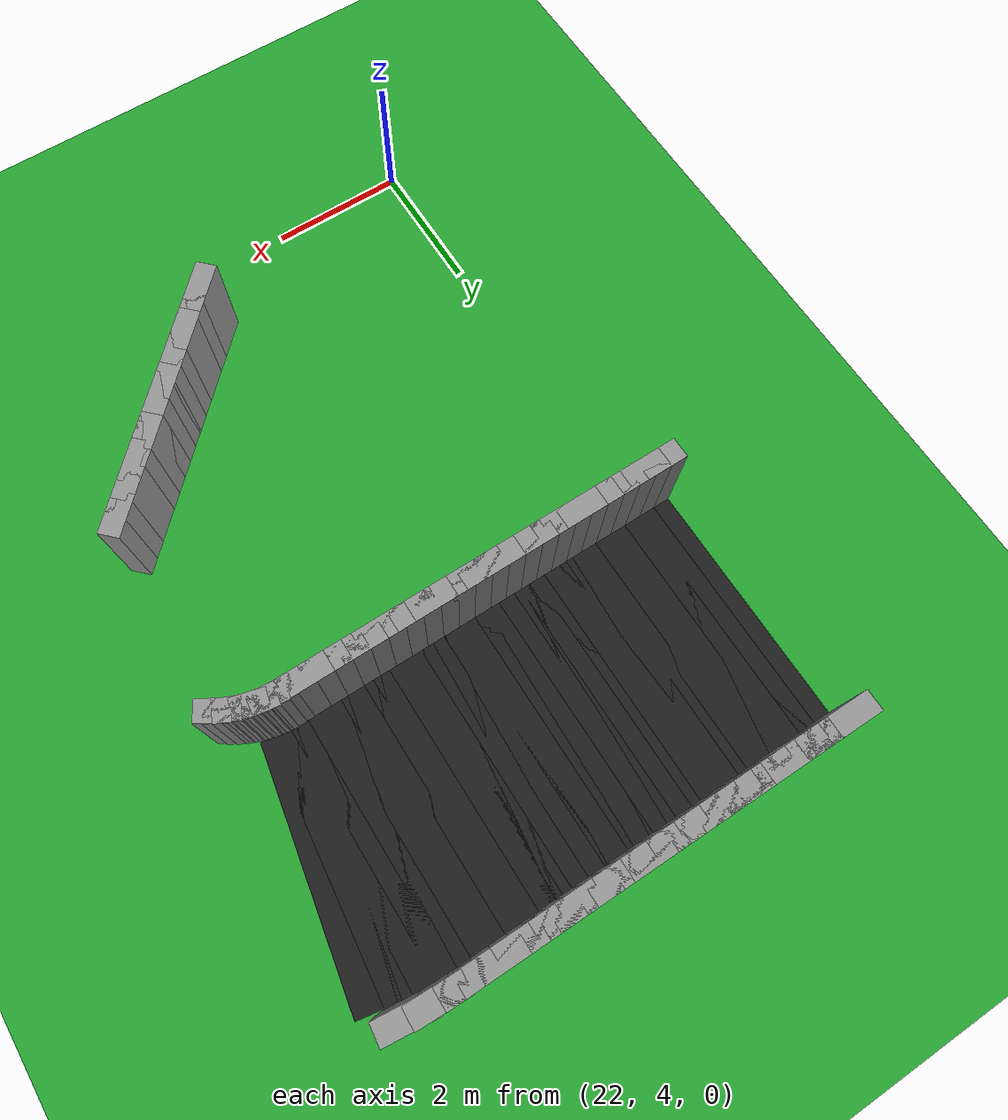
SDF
<sdf version="1.6">
 <world name="obstacle_tight">
  <include><uri>model://sun</uri></include>
  <model name="ground_plane">
   <static>true</static>
   <link name="link">
    <collision name="collision">
     <surface><friction><ode><mu>100</mu><mu2>50</mu2></ode></friction></surface>
     <geometry><plane><normal>0 0 1</normal><size>120 120</size></plane></geometry>
    </collision>
    <visual name="visual">
     <geometry><plane><normal>0 0 1</normal><size>120 120</size></plane></geometry>
     <material>
      <script><uri>file://media/materials/scripts/gazebo.material</uri><name>Gazebo/Green</name></script>
     </material>
    </visual>
   </link>
  </model>
  <model name="curbL_112">
   <static>true</static>
   <pose>25.604 5.048 0.750 0 0 0.78540</pose>
   <link name="link">
    <collision name="collision"><geometry><box><size>0.610 0.300 1.500</size></box></geometry></collision>
    <visual name="visual">
     <geometry><box><size>0.610 0.300 1.500</size></box></geometry>
     <material>
      <script><uri>file://media/materials/scripts/gazebo.material</uri><name>Gazebo/Grey</name></script>
     </material>
    </visual>
   </link>
  </model>
  <model name="curbL_113">
   <static>true</static>
   <pose>25.781 5.225 0.750 0 0 0.78540</pose>
   <link name="link">
    <collision name="collision"><geometry><box><size>0.610 0.300 1.500</size></box></geometry></collision>
    <visual name="visual">
     <geometry><box><size>0.610 0.300 1.500</size></box></geometry>
     <material>
      <script><uri>file://media/materials/scripts/gazebo.material</uri><name>Gazebo/Grey</name></script>
     </material>
    </visual>
   </link>
  </model>
  <model name="curbL_114">
   <static>true</static>
   <pose>25.958 5.401 0.750 0 0 0.78540</pose>
   <link name="link">
    <collision name="collision"><geometry><box><size>0.610 0.300 1.500</size></box></geometry></collision>
    <visual name="visual">
     <geometry><box><size>0.610 0.300 1.500</size></box></geometry>
     <material>
      <script><uri>file://media/materials/scripts/gazebo.material</uri><name>Gazebo/Grey</name></script>
     </material>
    </visual>
   </link>
  </model>
  <model name="curbL_115">
   <static>true</static>
   <pose>26.134 5.578 0.750 0 0 0.78540</pose>
   <link name="link">
    <collision name="collision"><geometry><box><size>0.610 0.300 1.500</size></box></geometry></collision>
    <visual name="visual">
     <geometry><box><size>0.610 0.300 1.500</size></box></geometry>
     <material>
      <script><uri>file://media/materials/scripts/gazebo.material</uri><name>Gazebo/Grey</name></script>
     </material>
    </visual>
   </link>
  </model>
  <model name="curbL_116">
   <static>true</static>
   <pose>26.311 5.755 0.750 0 0 0.78540</pose>
   <link name="link">
    <collision name="collision"><geometry><box><size>0.610 0.300 1.500</size></box></geometry></collision>
    <visual name="visual">
     <geometry><box><size>0.610 0.300 1.500</size></box></geometry>
     <material>
      <script><uri>file://media/materials/scripts/gazebo.material</uri><name>Gazebo/Grey</name></script>
     </material>
    </visual>
   </link>
  </model>
  <model name="curbL_117">
   <static>true</static>
   <pose>26.488 5.932 0.750 0 0 0.78540</pose>
   <link name="link">
    <collision name="collision"><geometry><box><size>0.610 0.300 1.500</size></box></geometry></collision>
    <visual name="visual">
     <geometry><box><size>0.610 0.300 1.500</size></box></geometry>
     <material>
      <script><uri>file://media/materials/scripts/gazebo.material</uri><name>Gazebo/Grey</name></script>
     </material>
    </visual>
   </link>
  </model>
  <model name="curbL_118">
   <static>true</static>
   <pose>26.665 6.109 0.750 0 0 0.78540</pose>
   <link name="link">
    <collision name="collision"><geometry><box><size>0.610 0.300 1.500</size></box></geometry></collision>
    <visual name="visual">
     <geometry><box><size>0.610 0.300 1.500</size></box></geometry>
     <material>
      <script><uri>file://media/materials/scripts/gazebo.material</uri><name>Gazebo/Grey</name></script>
     </material>
    </visual>
   </link>
  </model>
  <model name="curbL_119">
   <static>true</static>
   <pose>26.841 6.285 0.750 0 0 0.78540</pose>
   <link name="link">
    <collision name="collision"><geometry><box><size>0.610 0.300 1.500</size></box></geometry></collision>
    <visual name="visual">
     <geometry><box><size>0.610 0.300 1.500</size></box></geometry>
     <material>
      <script><uri>file://media/materials/scripts/gazebo.material</uri><name>Gazebo/Grey</name></script>
     </material>
    </visual>
   </link>
  </model>
  <model name="curbL_120">
   <static>true</static>
   <pose>27.018 6.462 0.750 0 0 0.78540</pose>
   <link name="link">
    <collision name="collision"><geometry><box><size>0.610 0.300 1.500</size></box></geometry></collision>
    <visual name="visual">
     <geometry><box><size>0.610 0.300 1.500</size></box></geometry>
     <material>
      <script><uri>file://media/materials/scripts/gazebo.material</uri><name>Gazebo/Grey</name></script>
     </material>
    </visual>
   </link>
  </model>
  <model name="curbL_121">
   <static>true</static>
   <pose>27.195 6.639 0.750 0 0 0.78540</pose>
   <link name="link">
    <collision name="collision"><geometry><box><size>0.610 0.300 1.500</size></box></geometry></collision>
    <visual name="visual">
     <geometry><box><size>0.610 0.300 1.500</size></box></geometry>
     <material>
      <script><uri>file://media/materials/scripts/gazebo.material</uri><name>Gazebo/Grey</name></script>
     </material>
    </visual>
   </link>
  </model>
  <model name="curbL_122">
   <static>true</static>
   <pose>27.372 6.816 0.750 0 0 0.78540</pose>
   <link name="link">
    <collision name="collision"><geometry><box><size>0.610 0.300 1.500</size></box></geometry></collision>
    <visual name="visual">
     <geometry><box><size>0.610 0.300 1.500</size></box></geometry>
     <material>
      <script><uri>file://media/materials/scripts/gazebo.material</uri><name>Gazebo/Grey</name></script>
     </material>
    </visual>
   </link>
  </model>
  <model name="curbL_123">
   <static>true</static>
   <pose>27.549 6.992 0.750 0 0 0.78540</pose>
   <link name="link">
    <collision name="collision"><geometry><box><size>0.610 0.300 1.500</size></box></geometry></collision>
    <visual name="visual">
     <geometry><box><size>0.610 0.300 1.500</size></box></geometry>
     <material>
      <script><uri>file://media/materials/scripts/gazebo.material</uri><name>Gazebo/Grey</name></script>
     </material>
    </visual>
   </link>
  </model>
  <model name="curbL_124">
   <static>true</static>
   <pose>27.725 7.169 0.750 0 0 0.78540</pose>
   <link name="link">
    <collision name="collision"><geometry><box><size>0.610 0.300 1.500</size></box></geometry></collision>
    <visual name="visual">
     <geometry><box><size>0.610 0.300 1.500</size></box></geometry>
     <material>
      <script><uri>file://media/materials/scripts/gazebo.material</uri><name>Gazebo/Grey</name></script>
     </material>
    </visual>
   </link>
  </model>
  <model name="curbL_125">
   <static>true</static>
   <pose>27.902 7.346 0.750 0 0 0.78540</pose>
   <link name="link">
    <collision name="collision"><geometry><box><size>0.610 0.300 1.500</size></box></geometry></collision>
    <visual name="visual">
     <geometry><box><size>0.610 0.300 1.500</size></box></geometry>
     <material>
      <script><uri>file://media/materials/scripts/gazebo.material</uri><name>Gazebo/Grey</name></script>
     </material>
    </visual>
   </link>
  </model>
  <model name="curbL_126">
   <static>true</static>
   <pose>28.079 7.523 0.750 0 0 0.78540</pose>
   <link name="link">
    <collision name="collision"><geometry><box><size>0.610 0.300 1.500</size></box></geometry></collision>
    <visual name="visual">
     <geometry><box><size>0.610 0.300 1.500</size></box></geometry>
     <material>
      <script><uri>file://media/materials/scripts/gazebo.material</uri><name>Gazebo/Grey</name></script>
     </material>
    </visual>
   </link>
  </model>
  <model name="curbL_154">
   <static>true</static>
   <pose>28.215 10.394 0.750 0 0 2.60609</pose>
   <link name="link">
    <collision name="collision"><geometry><box><size>0.471 0.300 1.500</size></box></geometry></collision>
    <visual name="visual">
     <geometry><box><size>0.471 0.300 1.500</size></box></geometry>
     <material>
      <script><uri>file://media/materials/scripts/gazebo.material</uri><name>Gazebo/Grey</name></script>
     </material>
    </visual>
   </link>
  </model>
  <model name="curbL_155">
   <static>true</static>
   <pose>28.118 10.447 0.750 0 0 2.67749</pose>
   <link name="link">
    <collision name="collision"><geometry><box><size>0.471 0.300 1.500</size></box></geometry></collision>
    <visual name="visual">
     <geometry><box><size>0.471 0.300 1.500</size></box></geometry>
     <material>
      <script><uri>file://media/materials/scripts/gazebo.material</uri><name>Gazebo/Grey</name></script>
     </material>
    </visual>
   </link>
  </model>
  <model name="curbL_156">
   <static>true</static>
   <pose>28.017 10.493 0.750 0 0 2.74889</pose>
   <link name="link">
    <collision name="collision"><geometry><box><size>0.471 0.300 1.500</size></box></geometry></collision>
    <visual name="visual">
     <geometry><box><size>0.471 0.300 1.500</size></box></geometry>
     <material>
      <script><uri>file://media/materials/scripts/gazebo.material</uri><name>Gazebo/Grey</name></script>
     </material>
    </visual>
   </link>
  </model>
  <model name="curbL_157">
   <static>true</static>
   <pose>27.914 10.532 0.750 0 0 2.82029</pose>
   <link name="link">
    <collision name="collision"><geometry><box><size>0.471 0.300 1.500</size></box></geometry></collision>
    <visual name="visual">
     <geometry><box><size>0.471 0.300 1.500</size></box></geometry>
     <material>
      <script><uri>file://media/materials/scripts/gazebo.material</uri><name>Gazebo/Grey</name></script>
     </material>
    </visual>
   </link>
  </model>
  <model name="curbL_158">
   <static>true</static>
   <pose>27.808 10.563 0.750 0 0 2.89169</pose>
   <link name="link">
    <collision name="collision"><geometry><box><size>0.471 0.300 1.500</size></box></geometry></collision>
    <visual name="visual">
     <geometry><box><size>0.471 0.300 1.500</size></box></geometry>
     <material>
      <script><uri>file://media/materials/scripts/gazebo.material</uri><name>Gazebo/Grey</name></script>
     </material>
    </visual>
   </link>
  </model>
  <model name="asphalt_159">
   <static>true</static>
   <pose>28.046 12.504 0.005 0 0 2.96309</pose>
   <link name="link">
    <visual name="visual">
     <geometry><box><size>0.610 3.600 0.010</size></box></geometry>
     <material>
      <script><uri>file://media/materials/scripts/gazebo.material</uri><name>Gazebo/Black</name></script>
     </material>
    </visual>
   </link>
  </model>
  <model name="curbL_159">
   <static>true</static>
   <pose>27.699 10.586 0.750 0 0 2.96309</pose>
   <link name="link">
    <collision name="collision"><geometry><box><size>0.471 0.300 1.500</size></box></geometry></collision>
    <visual name="visual">
     <geometry><box><size>0.471 0.300 1.500</size></box></geometry>
     <material>
      <script><uri>file://media/materials/scripts/gazebo.material</uri><name>Gazebo/Grey</name></script>
     </material>
    </visual>
   </link>
  </model>
  <model name="asphalt_160">
   <static>true</static>
   <pose>27.798 12.540 0.005 0 0 3.03449</pose>
   <link name="link">
    <visual name="visual">
     <geometry><box><size>0.610 3.600 0.010</size></box></geometry>
     <material>
      <script><uri>file://media/materials/scripts/gazebo.material</uri><name>Gazebo/Black</name></script>
     </material>
    </visual>
   </link>
  </model>
  <model name="curbL_160">
   <static>true</static>
   <pose>27.590 10.602 0.750 0 0 3.03449</pose>
   <link name="link">
    <collision name="collision"><geometry><box><size>0.471 0.300 1.500</size></box></geometry></collision>
    <visual name="visual">
     <geometry><box><size>0.471 0.300 1.500</size></box></geometry>
     <material>
      <script><uri>file://media/materials/scripts/gazebo.material</uri><name>Gazebo/Grey</name></script>
     </material>
    </visual>
   </link>
  </model>
  <model name="curbR_160">
   <static>true</static>
   <pose>28.007 14.477 0.750 0 0 3.03449</pose>
   <link name="link">
    <collision name="collision"><geometry><box><size>0.749 0.300 1.500</size></box></geometry></collision>
    <visual name="visual">
     <geometry><box><size>0.749 0.300 1.500</size></box></geometry>
     <material>
      <script><uri>file://media/materials/scripts/gazebo.material</uri><name>Gazebo/Grey</name></script>
     </material>
    </visual>
   </link>
  </model>
  <model name="asphalt_161">
   <static>true</static>
   <pose>27.549 12.558 0.005 0 0 3.10589</pose>
   <link name="link">
    <visual name="visual">
     <geometry><box><size>0.610 3.600 0.010</size></box></geometry>
     <material>
      <script><uri>file://media/materials/scripts/gazebo.material</uri><name>Gazebo/Black</name></script>
     </material>
    </visual>
   </link>
  </model>
  <model name="curbL_161">
   <static>true</static>
   <pose>27.480 10.610 0.750 0 0 3.10589</pose>
   <link name="link">
    <collision name="collision"><geometry><box><size>0.471 0.300 1.500</size></box></geometry></collision>
    <visual name="visual">
     <geometry><box><size>0.471 0.300 1.500</size></box></geometry>
     <material>
      <script><uri>file://media/materials/scripts/gazebo.material</uri><name>Gazebo/Grey</name></script>
     </material>
    </visual>
   </link>
  </model>
  <model name="curbR_161">
   <static>true</static>
   <pose>27.619 14.505 0.750 0 0 3.10589</pose>
   <link name="link">
    <collision name="collision"><geometry><box><size>0.749 0.300 1.500</size></box></geometry></collision>
    <visual name="visual">
     <geometry><box><size>0.749 0.300 1.500</size></box></geometry>
     <material>
      <script><uri>file://media/materials/scripts/gazebo.material</uri><name>Gazebo/Grey</name></script>
     </material>
    </visual>
   </link>
  </model>
  <model name="asphalt_162">
   <static>true</static>
   <pose>27.299 12.562 0.005 0 0 3.14159</pose>
   <link name="link">
    <visual name="visual">
     <geometry><box><size>0.610 3.600 0.010</size></box></geometry>
     <material>
      <script><uri>file://media/materials/scripts/gazebo.material</uri><name>Gazebo/Black</name></script>
     </material>
    </visual>
   </link>
  </model>
  <model name="curbL_162">
   <static>true</static>
   <pose>27.299 10.612 0.750 0 0 3.14159</pose>
   <link name="link">
    <collision name="collision"><geometry><box><size>0.610 0.300 1.500</size></box></geometry></collision>
    <visual name="visual">
     <geometry><box><size>0.610 0.300 1.500</size></box></geometry>
     <material>
      <script><uri>file://media/materials/scripts/gazebo.material</uri><name>Gazebo/Grey</name></script>
     </material>
    </visual>
   </link>
  </model>
  <model name="curbR_162">
   <static>true</static>
   <pose>27.299 14.512 0.750 0 0 3.14159</pose>
   <link name="link">
    <collision name="collision"><geometry><box><size>0.610 0.300 1.500</size></box></geometry></collision>
    <visual name="visual">
     <geometry><box><size>0.610 0.300 1.500</size></box></geometry>
     <material>
      <script><uri>file://media/materials/scripts/gazebo.material</uri><name>Gazebo/Grey</name></script>
     </material>
    </visual>
   </link>
  </model>
  <model name="asphalt_163">
   <static>true</static>
   <pose>27.049 12.562 0.005 0 0 3.14159</pose>
   <link name="link">
    <visual name="visual">
     <geometry><box><size>0.610 3.600 0.010</size></box></geometry>
     <material>
      <script><uri>file://media/materials/scripts/gazebo.material</uri><name>Gazebo/Black</name></script>
     </material>
    </visual>
   </link>
  </model>
  <model name="curbL_163">
   <static>true</static>
   <pose>27.049 10.612 0.750 0 0 3.14159</pose>
   <link name="link">
    <collision name="collision"><geometry><box><size>0.610 0.300 1.500</size></box></geometry></collision>
    <visual name="visual">
     <geometry><box><size>0.610 0.300 1.500</size></box></geometry>
     <material>
      <script><uri>file://media/materials/scripts/gazebo.material</uri><name>Gazebo/Grey</name></script>
     </material>
    </visual>
   </link>
  </model>
  <model name="curbR_163">
   <static>true</static>
   <pose>27.049 14.512 0.750 0 0 3.14159</pose>
   <link name="link">
    <collision name="collision"><geometry><box><size>0.610 0.300 1.500</size></box></geometry></collision>
    <visual name="visual">
     <geometry><box><size>0.610 0.300 1.500</size></box></geometry>
     <material>
      <script><uri>file://media/materials/scripts/gazebo.material</uri><name>Gazebo/Grey</name></script>
     </material>
    </visual>
   </link>
  </model>
  <model name="asphalt_164">
   <static>true</static>
   <pose>26.799 12.562 0.005 0 0 3.14159</pose>
   <link name="link">
    <visual name="visual">
     <geometry><box><size>0.610 3.600 0.010</size></box></geometry>
     <material>
      <script><uri>file://media/materials/scripts/gazebo.material</uri><name>Gazebo/Black</name></script>
     </material>
    </visual>
   </link>
  </model>
  <model name="curbL_164">
   <static>true</static>
   <pose>26.799 10.612 0.750 0 0 3.14159</pose>
   <link name="link">
    <collision name="collision"><geometry><box><size>0.610 0.300 1.500</size></box></geometry></collision>
    <visual name="visual">
     <geometry><box><size>0.610 0.300 1.500</size></box></geometry>
     <material>
      <script><uri>file://media/materials/scripts/gazebo.material</uri><name>Gazebo/Grey</name></script>
     </material>
    </visual>
   </link>
  </model>
  <model name="curbR_164">
   <static>true</static>
   <pose>26.799 14.512 0.750 0 0 3.14159</pose>
   <link name="link">
    <collision name="collision"><geometry><box><size>0.610 0.300 1.500</size></box></geometry></collision>
    <visual name="visual">
     <geometry><box><size>0.610 0.300 1.500</size></box></geometry>
     <material>
      <script><uri>file://media/materials/scripts/gazebo.material</uri><name>Gazebo/Grey</name></script>
     </material>
    </visual>
   </link>
  </model>
  <model name="asphalt_165">
   <static>true</static>
   <pose>26.549 12.562 0.005 0 0 3.14159</pose>
   <link name="link">
    <visual name="visual">
     <geometry><box><size>0.610 3.600 0.010</size></box></geometry>
     <material>
      <script><uri>file://media/materials/scripts/gazebo.material</uri><name>Gazebo/Black</name></script>
     </material>
    </visual>
   </link>
  </model>
  <model name="curbL_165">
   <static>true</static>
   <pose>26.549 10.612 0.750 0 0 3.14159</pose>
   <link name="link">
    <collision name="collision"><geometry><box><size>0.610 0.300 1.500</size></box></geometry></collision>
    <visual name="visual">
     <geometry><box><size>0.610 0.300 1.500</size></box></geometry>
     <material>
      <script><uri>file://media/materials/scripts/gazebo.material</uri><name>Gazebo/Grey</name></script>
     </material>
    </visual>
   </link>
  </model>
  <model name="curbR_165">
   <static>true</static>
   <pose>26.549 14.512 0.750 0 0 3.14159</pose>
   <link name="link">
    <collision name="collision"><geometry><box><size>0.610 0.300 1.500</size></box></geometry></collision>
    <visual name="visual">
     <geometry><box><size>0.610 0.300 1.500</size></box></geometry>
     <material>
      <script><uri>file://media/materials/scripts/gazebo.material</uri><name>Gazebo/Grey</name></script>
     </material>
    </visual>
   </link>
  </model>
  <model name="asphalt_166">
   <static>true</static>
   <pose>26.299 12.562 0.005 0 0 3.14159</pose>
   <link name="link">
    <visual name="visual">
     <geometry><box><size>0.610 3.600 0.010</size></box></geometry>
     <material>
      <script><uri>file://media/materials/scripts/gazebo.material</uri><name>Gazebo/Black</name></script>
     </material>
    </visual>
   </link>
  </model>
  <model name="curbL_166">
   <static>true</static>
   <pose>26.299 10.612 0.750 0 0 3.14159</pose>
   <link name="link">
    <collision name="collision"><geometry><box><size>0.610 0.300 1.500</size></box></geometry></collision>
    <visual name="visual">
     <geometry><box><size>0.610 0.300 1.500</size></box></geometry>
     <material>
      <script><uri>file://media/materials/scripts/gazebo.material</uri><name>Gazebo/Grey</name></script>
     </material>
    </visual>
   </link>
  </model>
  <model name="curbR_166">
   <static>true</static>
   <pose>26.299 14.512 0.750 0 0 3.14159</pose>
   <link name="link">
    <collision name="collision"><geometry><box><size>0.610 0.300 1.500</size></box></geometry></collision>
    <visual name="visual">
     <geometry><box><size>0.610 0.300 1.500</size></box></geometry>
     <material>
      <script><uri>file://media/materials/scripts/gazebo.material</uri><name>Gazebo/Grey</name></script>
     </material>
    </visual>
   </link>
  </model>
  <model name="asphalt_167">
   <static>true</static>
   <pose>26.049 12.562 0.005 0 0 3.14159</pose>
   <link name="link">
    <visual name="visual">
     <geometry><box><size>0.610 3.600 0.010</size></box></geometry>
     <material>
      <script><uri>file://media/materials/scripts/gazebo.material</uri><name>Gazebo/Black</name></script>
     </material>
    </visual>
   </link>
  </model>
  <model name="curbL_167">
   <static>true</static>
   <pose>26.049 10.612 0.750 0 0 3.14159</pose>
   <link name="link">
    <collision name="collision"><geometry><box><size>0.610 0.300 1.500</size></box></geometry></collision>
    <visual name="visual">
     <geometry><box><size>0.610 0.300 1.500</size></box></geometry>
     <material>
      <script><uri>file://media/materials/scripts/gazebo.material</uri><name>Gazebo/Grey</name></script>
     </material>
    </visual>
   </link>
  </model>
  <model name="curbR_167">
   <static>true</static>
   <pose>26.049 14.512 0.750 0 0 3.14159</pose>
   <link name="link">
    <collision name="collision"><geometry><box><size>0.610 0.300 1.500</size></box></geometry></collision>
    <visual name="visual">
     <geometry><box><size>0.610 0.300 1.500</size></box></geometry>
     <material>
      <script><uri>file://media/materials/scripts/gazebo.material</uri><name>Gazebo/Grey</name></script>
     </material>
    </visual>
   </link>
  </model>
  <model name="asphalt_168">
   <static>true</static>
   <pose>25.799 12.562 0.005 0 0 3.14159</pose>
   <link name="link">
    <visual name="visual">
     <geometry><box><size>0.610 3.600 0.010</size></box></geometry>
     <material>
      <script><uri>file://media/materials/scripts/gazebo.material</uri><name>Gazebo/Black</name></script>
     </material>
    </visual>
   </link>
  </model>
  <model name="curbL_168">
   <static>true</static>
   <pose>25.799 10.612 0.750 0 0 3.14159</pose>
   <link name="link">
    <collision name="collision"><geometry><box><size>0.610 0.300 1.500</size></box></geometry></collision>
    <visual name="visual">
     <geometry><box><size>0.610 0.300 1.500</size></box></geometry>
     <material>
      <script><uri>file://media/materials/scripts/gazebo.material</uri><name>Gazebo/Grey</name></script>
     </material>
    </visual>
   </link>
  </model>
  <model name="curbR_168">
   <static>true</static>
   <pose>25.799 14.512 0.750 0 0 3.14159</pose>
   <link name="link">
    <collision name="collision"><geometry><box><size>0.610 0.300 1.500</size></box></geometry></collision>
    <visual name="visual">
     <geometry><box><size>0.610 0.300 1.500</size></box></geometry>
     <material>
      <script><uri>file://media/materials/scripts/gazebo.material</uri><name>Gazebo/Grey</name></script>
     </material>
    </visual>
   </link>
  </model>
  <model name="asphalt_169">
   <static>true</static>
   <pose>25.549 12.562 0.005 0 0 3.14159</pose>
   <link name="link">
    <visual name="visual">
     <geometry><box><size>0.610 3.600 0.010</size></box></geometry>
     <material>
      <script><uri>file://media/materials/scripts/gazebo.material</uri><name>Gazebo/Black</name></script>
     </material>
    </visual>
   </link>
  </model>
  <model name="curbL_169">
   <static>true</static>
   <pose>25.549 10.612 0.750 0 0 3.14159</pose>
   <link name="link">
    <collision name="collision"><geometry><box><size>0.610 0.300 1.500</size></box></geometry></collision>
    <visual name="visual">
     <geometry><box><size>0.610 0.300 1.500</size></box></geometry>
     <material>
      <script><uri>file://media/materials/scripts/gazebo.material</uri><name>Gazebo/Grey</name></script>
     </material>
    </visual>
   </link>
  </model>
  <model name="curbR_169">
   <static>true</static>
   <pose>25.549 14.512 0.750 0 0 3.14159</pose>
   <link name="link">
    <collision name="collision"><geometry><box><size>0.610 0.300 1.500</size></box></geometry></collision>
    <visual name="visual">
     <geometry><box><size>0.610 0.300 1.500</size></box></geometry>
     <material>
      <script><uri>file://media/materials/scripts/gazebo.material</uri><name>Gazebo/Grey</name></script>
     </material>
    </visual>
   </link>
  </model>
  <model name="asphalt_170">
   <static>true</static>
   <pose>25.299 12.562 0.005 0 0 3.14159</pose>
   <link name="link">
    <visual name="visual">
     <geometry><box><size>0.610 3.600 0.010</size></box></geometry>
     <material>
      <script><uri>file://media/materials/scripts/gazebo.material</uri><name>Gazebo/Black</name></script>
     </material>
    </visual>
   </link>
  </model>
  <model name="curbL_170">
   <static>true</static>
   <pose>25.299 10.612 0.750 0 0 3.14159</pose>
   <link name="link">
    <collision name="collision"><geometry><box><size>0.610 0.300 1.500</size></box></geometry></collision>
    <visual name="visual">
     <geometry><box><size>0.610 0.300 1.500</size></box></geometry>
     <material>
      <script><uri>file://media/materials/scripts/gazebo.material</uri><name>Gazebo/Grey</name></script>
     </material>
    </visual>
   </link>
  </model>
  <model name="curbR_170">
   <static>true</static>
   <pose>25.299 14.512 0.750 0 0 3.14159</pose>
   <link name="link">
    <collision name="collision"><geometry><box><size>0.610 0.300 1.500</size></box></geometry></collision>
    <visual name="visual">
     <geometry><box><size>0.610 0.300 1.500</size></box></geometry>
     <material>
      <script><uri>file://media/materials/scripts/gazebo.material</uri><name>Gazebo/Grey</name></script>
     </material>
    </visual>
   </link>
  </model>
  <model name="asphalt_171">
   <static>true</static>
   <pose>25.049 12.562 0.005 0 0 3.14159</pose>
   <link name="link">
    <visual name="visual">
     <geometry><box><size>0.610 3.600 0.010</size></box></geometry>
     <material>
      <script><uri>file://media/materials/scripts/gazebo.material</uri><name>Gazebo/Black</name></script>
     </material>
    </visual>
   </link>
  </model>
  <model name="curbL_171">
   <static>true</static>
   <pose>25.049 10.612 0.750 0 0 3.14159</pose>
   <link name="link">
    <collision name="collision"><geometry><box><size>0.610 0.300 1.500</size></box></geometry></collision>
    <visual name="visual">
     <geometry><box><size>0.610 0.300 1.500</size></box></geometry>
     <material>
      <script><uri>file://media/materials/scripts/gazebo.material</uri><name>Gazebo/Grey</name></script>
     </material>
    </visual>
   </link>
  </model>
  <model name="curbR_171">
   <static>true</static>
   <pose>25.049 14.512 0.750 0 0 3.14159</pose>
   <link name="link">
    <collision name="collision"><geometry><box><size>0.610 0.300 1.500</size></box></geometry></collision>
    <visual name="visual">
     <geometry><box><size>0.610 0.300 1.500</size></box></geometry>
     <material>
      <script><uri>file://media/materials/scripts/gazebo.material</uri><name>Gazebo/Grey</name></script>
     </material>
    </visual>
   </link>
  </model>
  <model name="asphalt_172">
   <static>true</static>
   <pose>24.799 12.562 0.005 0 0 3.14159</pose>
   <link name="link">
    <visual name="visual">
     <geometry><box><size>0.610 3.600 0.010</size></box></geometry>
     <material>
      <script><uri>file://media/materials/scripts/gazebo.material</uri><name>Gazebo/Black</name></script>
     </material>
    </visual>
   </link>
  </model>
  <model name="curbL_172">
   <static>true</static>
   <pose>24.799 10.612 0.750 0 0 3.14159</pose>
   <link name="link">
    <collision name="collision"><geometry><box><size>0.610 0.300 1.500</size></box></geometry></collision>
    <visual name="visual">
     <geometry><box><size>0.610 0.300 1.500</size></box></geometry>
     <material>
      <script><uri>file://media/materials/scripts/gazebo.material</uri><name>Gazebo/Grey</name></script>
     </material>
    </visual>
   </link>
  </model>
  <model name="curbR_172">
   <static>true</static>
   <pose>24.799 14.512 0.750 0 0 3.14159</pose>
   <link name="link">
    <collision name="collision"><geometry><box><size>0.610 0.300 1.500</size></box></geometry></collision>
    <visual name="visual">
     <geometry><box><size>0.610 0.300 1.500</size></box></geometry>
     <material>
      <script><uri>file://media/materials/scripts/gazebo.material</uri><name>Gazebo/Grey</name></script>
     </material>
    </visual>
   </link>
  </model>
  <model name="asphalt_173">
   <static>true</static>
   <pose>24.549 12.562 0.005 0 0 3.14159</pose>
   <link name="link">
    <visual name="visual">
     <geometry><box><size>0.610 3.600 0.010</size></box></geometry>
     <material>
      <script><uri>file://media/materials/scripts/gazebo.material</uri><name>Gazebo/Black</name></script>
     </material>
    </visual>
   </link>
  </model>
  <model name="curbL_173">
   <static>true</static>
   <pose>24.549 10.612 0.750 0 0 3.14159</pose>
   <link name="link">
    <collision name="collision"><geometry><box><size>0.610 0.300 1.500</size></box></geometry></collision>
    <visual name="visual">
     <geometry><box><size>0.610 0.300 1.500</size></box></geometry>
     <material>
      <script><uri>file://media/materials/scripts/gazebo.material</uri><name>Gazebo/Grey</name></script>
     </material>
    </visual>
   </link>
  </model>
  <model name="curbR_173">
   <static>true</static>
   <pose>24.549 14.512 0.750 0 0 3.14159</pose>
   <link name="link">
    <collision name="collision"><geometry><box><size>0.610 0.300 1.500</size></box></geometry></collision>
    <visual name="visual">
     <geometry><box><size>0.610 0.300 1.500</size></box></geometry>
     <material>
      <script><uri>file://media/materials/scripts/gazebo.material</uri><name>Gazebo/Grey</name></script>
     </material>
    </visual>
   </link>
  </model>
  <model name="asphalt_174">
   <static>true</static>
   <pose>24.299 12.562 0.005 0 0 3.14159</pose>
   <link name="link">
    <visual name="visual">
     <geometry><box><size>0.610 3.600 0.010</size></box></geometry>
     <material>
      <script><uri>file://media/materials/scripts/gazebo.material</uri><name>Gazebo/Black</name></script>
     </material>
    </visual>
   </link>
  </model>
  <model name="curbL_174">
   <static>true</static>
   <pose>24.299 10.612 0.750 0 0 3.14159</pose>
   <link name="link">
    <collision name="collision"><geometry><box><size>0.610 0.300 1.500</size></box></geometry></collision>
    <visual name="visual">
     <geometry><box><size>0.610 0.300 1.500</size></box></geometry>
     <material>
      <script><uri>file://media/materials/scripts/gazebo.material</uri><name>Gazebo/Grey</name></script>
     </material>
    </visual>
   </link>
  </model>
  <model name="curbR_174">
   <static>true</static>
   <pose>24.299 14.512 0.750 0 0 3.14159</pose>
   <link name="link">
    <collision name="collision"><geometry><box><size>0.610 0.300 1.500</size></box></geometry></collision>
    <visual name="visual">
     <geometry><box><size>0.610 0.300 1.500</size></box></geometry>
     <material>
      <script><uri>file://media/materials/scripts/gazebo.material</uri><name>Gazebo/Grey</name></script>
     </material>
    </visual>
   </link>
  </model>
  <model name="asphalt_175">
   <static>true</static>
   <pose>24.049 12.562 0.005 0 0 3.14159</pose>
   <link name="link">
    <visual name="visual">
     <geometry><box><size>0.610 3.600 0.010</size></box></geometry>
     <material>
      <script><uri>file://media/materials/scripts/gazebo.material</uri><name>Gazebo/Black</name></script>
     </material>
    </visual>
   </link>
  </model>
  <model name="curbL_175">
   <static>true</static>
   <pose>24.049 10.612 0.750 0 0 3.14159</pose>
   <link name="link">
    <collision name="collision"><geometry><box><size>0.610 0.300 1.500</size></box></geometry></collision>
    <visual name="visual">
     <geometry><box><size>0.610 0.300 1.500</size></box></geometry>
     <material>
      <script><uri>file://media/materials/scripts/gazebo.material</uri><name>Gazebo/Grey</name></script>
     </material>
    </visual>
   </link>
  </model>
  <model name="curbR_175">
   <static>true</static>
   <pose>24.049 14.512 0.750 0 0 3.14159</pose>
   <link name="link">
    <collision name="collision"><geometry><box><size>0.610 0.300 1.500</size></box></geometry></collision>
    <visual name="visual">
     <geometry><box><size>0.610 0.300 1.500</size></box></geometry>
     <material>
      <script><uri>file://media/materials/scripts/gazebo.material</uri><name>Gazebo/Grey</name></script>
     </material>
    </visual>
   </link>
  </model>
  <model name="asphalt_176">
   <static>true</static>
   <pose>23.799 12.562 0.005 0 0 3.14159</pose>
   <link name="link">
    <visual name="visual">
     <geometry><box><size>0.610 3.600 0.010</size></box></geometry>
     <material>
      <script><uri>file://media/materials/scripts/gazebo.material</uri><name>Gazebo/Black</name></script>
     </material>
    </visual>
   </link>
  </model>
  <model name="curbL_176">
   <static>true</static>
   <pose>23.799 10.612 0.750 0 0 3.14159</pose>
   <link name="link">
    <collision name="collision"><geometry><box><size>0.610 0.300 1.500</size></box></geometry></collision>
    <visual name="visual">
     <geometry><box><size>0.610 0.300 1.500</size></box></geometry>
     <material>
      <script><uri>file://media/materials/scripts/gazebo.material</uri><name>Gazebo/Grey</name></script>
     </material>
    </visual>
   </link>
  </model>
  <model name="curbR_176">
   <static>true</static>
   <pose>23.799 14.512 0.750 0 0 3.14159</pose>
   <link name="link">
    <collision name="collision"><geometry><box><size>0.610 0.300 1.500</size></box></geometry></collision>
    <visual name="visual">
     <geometry><box><size>0.610 0.300 1.500</size></box></geometry>
     <material>
      <script><uri>file://media/materials/scripts/gazebo.material</uri><name>Gazebo/Grey</name></script>
     </material>
    </visual>
   </link>
  </model>
  <model name="asphalt_177">
   <static>true</static>
   <pose>23.549 12.562 0.005 0 0 3.14159</pose>
   <link name="link">
    <visual name="visual">
     <geometry><box><size>0.610 3.600 0.010</size></box></geometry>
     <material>
      <script><uri>file://media/materials/scripts/gazebo.material</uri><name>Gazebo/Black</name></script>
     </material>
    </visual>
   </link>
  </model>
  <model name="curbL_177">
   <static>true</static>
   <pose>23.549 10.612 0.750 0 0 3.14159</pose>
   <link name="link">
    <collision name="collision"><geometry><box><size>0.610 0.300 1.500</size></box></geometry></collision>
    <visual name="visual">
     <geometry><box><size>0.610 0.300 1.500</size></box></geometry>
     <material>
      <script><uri>file://media/materials/scripts/gazebo.material</uri><name>Gazebo/Grey</name></script>
     </material>
    </visual>
   </link>
  </model>
  <model name="curbR_177">
   <static>true</static>
   <pose>23.549 14.512 0.750 0 0 3.14159</pose>
   <link name="link">
    <collision name="collision"><geometry><box><size>0.610 0.300 1.500</size></box></geometry></collision>
    <visual name="visual">
     <geometry><box><size>0.610 0.300 1.500</size></box></geometry>
     <material>
      <script><uri>file://media/materials/scripts/gazebo.material</uri><name>Gazebo/Grey</name></script>
     </material>
    </visual>
   </link>
  </model>
  <model name="asphalt_178">
   <static>true</static>
   <pose>23.299 12.562 0.005 0 0 3.14159</pose>
   <link name="link">
    <visual name="visual">
     <geometry><box><size>0.610 3.600 0.010</size></box></geometry>
     <material>
      <script><uri>file://media/materials/scripts/gazebo.material</uri><name>Gazebo/Black</name></script>
     </material>
    </visual>
   </link>
  </model>
  <model name="curbL_178">
   <static>true</static>
   <pose>23.299 10.612 0.750 0 0 3.14159</pose>
   <link name="link">
    <collision name="collision"><geometry><box><size>0.610 0.300 1.500</size></box></geometry></collision>
    <visual name="visual">
     <geometry><box><size>0.610 0.300 1.500</size></box></geometry>
     <material>
      <script><uri>file://media/materials/scripts/gazebo.material</uri><name>Gazebo/Grey</name></script>
     </material>
    </visual>
   </link>
  </model>
  <model name="curbR_178">
   <static>true</static>
   <pose>23.299 14.512 0.750 0 0 3.14159</pose>
   <link name="link">
    <collision name="collision"><geometry><box><size>0.610 0.300 1.500</size></box></geometry></collision>
    <visual name="visual">
     <geometry><box><size>0.610 0.300 1.500</size></box></geometry>
     <material>
      <script><uri>file://media/materials/scripts/gazebo.material</uri><name>Gazebo/Grey</name></script>
     </material>
    </visual>
   </link>
  </model>
  <model name="asphalt_179">
   <static>true</static>
   <pose>23.049 12.562 0.005 0 0 3.14159</pose>
   <link name="link">
    <visual name="visual">
     <geometry><box><size>0.610 3.600 0.010</size></box></geometry>
     <material>
      <script><uri>file://media/materials/scripts/gazebo.material</uri><name>Gazebo/Black</name></script>
     </material>
    </visual>
   </link>
  </model>
  <model name="curbL_179">
   <static>true</static>
   <pose>23.049 10.612 0.750 0 0 3.14159</pose>
   <link name="link">
    <collision name="collision"><geometry><box><size>0.610 0.300 1.500</size></box></geometry></collision>
    <visual name="visual">
     <geometry><box><size>0.610 0.300 1.500</size></box></geometry>
     <material>
      <script><uri>file://media/materials/scripts/gazebo.material</uri><name>Gazebo/Grey</name></script>
     </material>
    </visual>
   </link>
  </model>
  <model name="curbR_179">
   <static>true</static>
   <pose>23.049 14.512 0.750 0 0 3.14159</pose>
   <link name="link">
    <collision name="collision"><geometry><box><size>0.610 0.300 1.500</size></box></geometry></collision>
    <visual name="visual">
     <geometry><box><size>0.610 0.300 1.500</size></box></geometry>
     <material>
      <script><uri>file://media/materials/scripts/gazebo.material</uri><name>Gazebo/Grey</name></script>
     </material>
    </visual>
   </link>
  </model>
  <model name="asphalt_180">
   <static>true</static>
   <pose>22.799 12.562 0.005 0 0 3.14159</pose>
   <link name="link">
    <visual name="visual">
     <geometry><box><size>0.610 3.600 0.010</size></box></geometry>
     <material>
      <script><uri>file://media/materials/scripts/gazebo.material</uri><name>Gazebo/Black</name></script>
     </material>
    </visual>
   </link>
  </model>
  <model name="curbL_180">
   <static>true</static>
   <pose>22.799 10.612 0.750 0 0 3.14159</pose>
   <link name="link">
    <collision name="collision"><geometry><box><size>0.610 0.300 1.500</size></box></geometry></collision>
    <visual name="visual">
     <geometry><box><size>0.610 0.300 1.500</size></box></geometry>
     <material>
      <script><uri>file://media/materials/scripts/gazebo.material</uri><name>Gazebo/Grey</name></script>
     </material>
    </visual>
   </link>
  </model>
  <model name="curbR_180">
   <static>true</static>
   <pose>22.799 14.512 0.750 0 0 3.14159</pose>
   <link name="link">
    <collision name="collision"><geometry><box><size>0.610 0.300 1.500</size></box></geometry></collision>
    <visual name="visual">
     <geometry><box><size>0.610 0.300 1.500</size></box></geometry>
     <material>
      <script><uri>file://media/materials/scripts/gazebo.material</uri><name>Gazebo/Grey</name></script>
     </material>
    </visual>
   </link>
  </model>
  <model name="asphalt_181">
   <static>true</static>
   <pose>22.549 12.562 0.005 0 0 3.14159</pose>
   <link name="link">
    <visual name="visual">
     <geometry><box><size>0.610 3.600 0.010</size></box></geometry>
     <material>
      <script><uri>file://media/materials/scripts/gazebo.material</uri><name>Gazebo/Black</name></script>
     </material>
    </visual>
   </link>
  </model>
  <model name="curbL_181">
   <static>true</static>
   <pose>22.549 10.612 0.750 0 0 3.14159</pose>
   <link name="link">
    <collision name="collision"><geometry><box><size>0.610 0.300 1.500</size></box></geometry></collision>
    <visual name="visual">
     <geometry><box><size>0.610 0.300 1.500</size></box></geometry>
     <material>
      <script><uri>file://media/materials/scripts/gazebo.material</uri><name>Gazebo/Grey</name></script>
     </material>
    </visual>
   </link>
  </model>
  <model name="curbR_181">
   <static>true</static>
   <pose>22.549 14.512 0.750 0 0 3.14159</pose>
   <link name="link">
    <collision name="collision"><geometry><box><size>0.610 0.300 1.500</size></box></geometry></collision>
    <visual name="visual">
     <geometry><box><size>0.610 0.300 1.500</size></box></geometry>
     <material>
      <script><uri>file://media/materials/scripts/gazebo.material</uri><name>Gazebo/Grey</name></script>
     </material>
    </visual>
   </link>
  </model>
  <model name="asphalt_182">
   <static>true</static>
   <pose>22.299 12.562 0.005 0 0 3.14159</pose>
   <link name="link">
    <visual name="visual">
     <geometry><box><size>0.610 3.600 0.010</size></box></geometry>
     <material>
      <script><uri>file://media/materials/scripts/gazebo.material</uri><name>Gazebo/Black</name></script>
     </material>
    </visual>
   </link>
  </model>
  <model name="curbL_182">
   <static>true</static>
   <pose>22.299 10.612 0.750 0 0 3.14159</pose>
   <link name="link">
    <collision name="collision"><geometry><box><size>0.610 0.300 1.500</size></box></geometry></collision>
    <visual name="visual">
     <geometry><box><size>0.610 0.300 1.500</size></box></geometry>
     <material>
      <script><uri>file://media/materials/scripts/gazebo.material</uri><name>Gazebo/Grey</name></script>
     </material>
    </visual>
   </link>
  </model>
  <model name="curbR_182">
   <static>true</static>
   <pose>22.299 14.512 0.750 0 0 3.14159</pose>
   <link name="link">
    <collision name="collision"><geometry><box><size>0.610 0.300 1.500</size></box></geometry></collision>
    <visual name="visual">
     <geometry><box><size>0.610 0.300 1.500</size></box></geometry>
     <material>
      <script><uri>file://media/materials/scripts/gazebo.material</uri><name>Gazebo/Grey</name></script>
     </material>
    </visual>
   </link>
  </model>
  <model name="asphalt_183">
   <static>true</static>
   <pose>22.049 12.562 0.005 0 0 3.14159</pose>
   <link name="link">
    <visual name="visual">
     <geometry><box><size>0.610 3.600 0.010</size></box></geometry>
     <material>
      <script><uri>file://media/materials/scripts/gazebo.material</uri><name>Gazebo/Black</name></script>
     </material>
    </visual>
   </link>
  </model>
  <model name="curbL_183">
   <static>true</static>
   <pose>22.049 10.612 0.750 0 0 3.14159</pose>
   <link name="link">
    <collision name="collision"><geometry><box><size>0.610 0.300 1.500</size></box></geometry></collision>
    <visual name="visual">
     <geometry><box><size>0.610 0.300 1.500</size></box></geometry>
     <material>
      <script><uri>file://media/materials/scripts/gazebo.material</uri><name>Gazebo/Grey</name></script>
     </material>
    </visual>
   </link>
  </model>
  <model name="curbR_183">
   <static>true</static>
   <pose>22.049 14.512 0.750 0 0 3.14159</pose>
   <link name="link">
    <collision name="collision"><geometry><box><size>0.610 0.300 1.500</size></box></geometry></collision>
    <visual name="visual">
     <geometry><box><size>0.610 0.300 1.500</size></box></geometry>
     <material>
      <script><uri>file://media/materials/scripts/gazebo.material</uri><name>Gazebo/Grey</name></script>
     </material>
    </visual>
   </link>
  </model>
  <model name="asphalt_184">
   <static>true</static>
   <pose>21.799 12.562 0.005 0 0 3.14159</pose>
   <link name="link">
    <visual name="visual">
     <geometry><box><size>0.610 3.600 0.010</size></box></geometry>
     <material>
      <script><uri>file://media/materials/scripts/gazebo.material</uri><name>Gazebo/Black</name></script>
     </material>
    </visual>
   </link>
  </model>
  <model name="curbL_184">
   <static>true</static>
   <pose>21.799 10.612 0.750 0 0 3.14159</pose>
   <link name="link">
    <collision name="collision"><geometry><box><size>0.610 0.300 1.500</size></box></geometry></collision>
    <visual name="visual">
     <geometry><box><size>0.610 0.300 1.500</size></box></geometry>
     <material>
      <script><uri>file://media/materials/scripts/gazebo.material</uri><name>Gazebo/Grey</name></script>
     </material>
    </visual>
   </link>
  </model>
  <model name="curbR_184">
   <static>true</static>
   <pose>21.799 14.512 0.750 0 0 3.14159</pose>
   <link name="link">
    <collision name="collision"><geometry><box><size>0.610 0.300 1.500</size></box></geometry></collision>
    <visual name="visual">
     <geometry><box><size>0.610 0.300 1.500</size></box></geometry>
     <material>
      <script><uri>file://media/materials/scripts/gazebo.material</uri><name>Gazebo/Grey</name></script>
     </material>
    </visual>
   </link>
  </model>
 </world>
</sdf>
